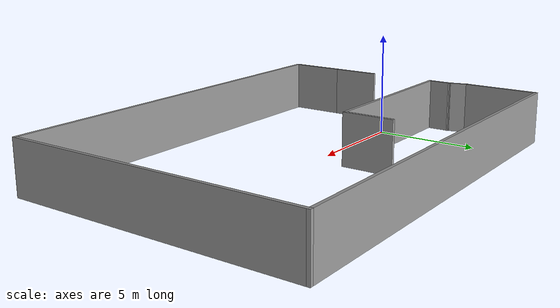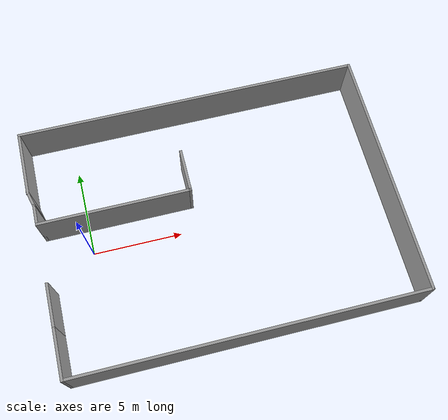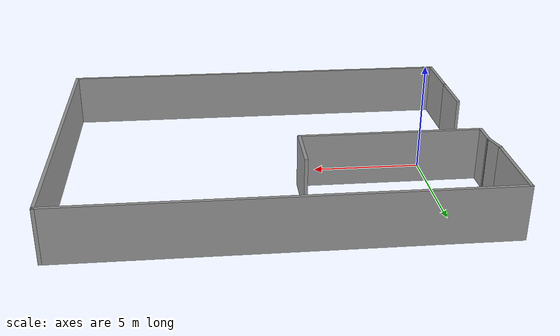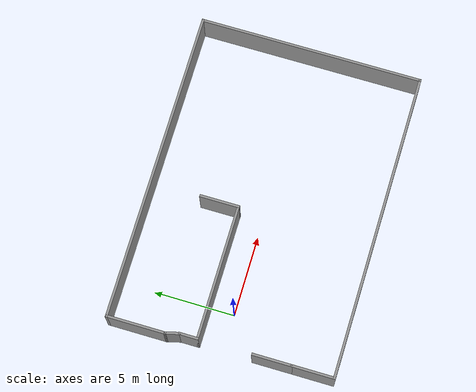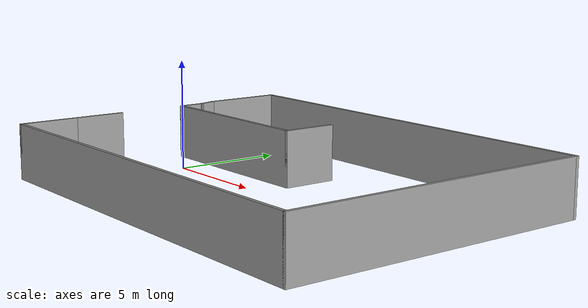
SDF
<?xml version='1.0'?>
<sdf version='1.7'>
  <model name='test_models'>
    <pose>7.06007 0.084301 0 0 -0 0</pose>
    <link name='Wall_0'>
      <collision name='Wall_0_Collision'>
        <geometry>
          <box>
            <size>2.5 0.15 2.5</size>
          </box>
        </geometry>
        <pose>0 0 1.25 0 -0 0</pose>
      </collision>
      <visual name='Wall_0_Visual'>
        <pose>0 0 1.25 0 -0 0</pose>
        <geometry>
          <box>
            <size>2.5 0.15 2.5</size>
          </box>
        </geometry>
        <material>
          <script>
            <uri>file://media/materials/scripts/gazebo.material</uri>
            <name>Gazebo/Grey</name>
          </script>
          <ambient>1 1 1 1</ambient>
        </material>
        <meta>
          <layer>0</layer>
        </meta>
      </visual>
      <pose>-9.41657 -3.15 0 0 -0 -1.5708</pose>
    </link>
    <link name='Wall_10'>
      <collision name='Wall_10_Collision'>
        <geometry>
          <box>
            <size>2.5 0.15 2.5</size>
          </box>
        </geometry>
        <pose>0 0 1.25 0 -0 0</pose>
      </collision>
      <visual name='Wall_10_Visual'>
        <pose>0 0 1.25 0 -0 0</pose>
        <geometry>
          <box>
            <size>2.5 0.15 2.5</size>
          </box>
        </geometry>
        <material>
          <script>
            <uri>file://media/materials/scripts/gazebo.material</uri>
            <name>Gazebo/Grey</name>
          </script>
          <ambient>1 1 1 1</ambient>
        </material>
        <meta>
          <layer>0</layer>
        </meta>
      </visual>
      <pose>-1.09658 2.57896 0 0 -0 1.5708</pose>
    </link>
    <link name='Wall_2'>
      <collision name='Wall_2_Collision'>
        <geometry>
          <box>
            <size>2.75 0.15 2.5</size>
          </box>
        </geometry>
        <pose>0 0 1.25 0 -0 0</pose>
      </collision>
      <visual name='Wall_2_Visual'>
        <pose>0 0 1.25 0 -0 0</pose>
        <geometry>
          <box>
            <size>2.75 0.15 2.5</size>
          </box>
        </geometry>
        <material>
          <script>
            <uri>file://media/materials/scripts/gazebo.material</uri>
            <name>Gazebo/Grey</name>
          </script>
          <ambient>1 1 1 1</ambient>
        </material>
        <meta>
          <layer>0</layer>
        </meta>
      </visual>
      <pose>-9.41657 -5.625 0 0 -0 -1.5708</pose>
    </link>
    <link name='Wall_3'>
      <collision name='Wall_3_Collision'>
        <geometry>
          <box>
            <size>19.25 0.15 2.5</size>
          </box>
        </geometry>
        <pose>0 0 1.25 0 -0 0</pose>
      </collision>
      <visual name='Wall_3_Visual'>
        <pose>0 0 1.25 0 -0 0</pose>
        <geometry>
          <box>
            <size>19.25 0.15 2.5</size>
          </box>
        </geometry>
        <material>
          <script>
            <uri>file://media/materials/scripts/gazebo.material</uri>
            <name>Gazebo/Grey</name>
          </script>
          <ambient>1 1 1 1</ambient>
        </material>
        <meta>
          <layer>0</layer>
        </meta>
      </visual>
      <pose>0.133427 -6.925 0 0 -0 0</pose>
    </link>
    <link name='Wall_4'>
      <collision name='Wall_4_Collision'>
        <geometry>
          <box>
            <size>14 0.15 2.5</size>
          </box>
        </geometry>
        <pose>0 0 1.25 0 -0 0</pose>
      </collision>
      <visual name='Wall_4_Visual'>
        <pose>0 0 1.25 0 -0 0</pose>
        <geometry>
          <box>
            <size>14 0.15 2.5</size>
          </box>
        </geometry>
        <material>
          <script>
            <uri>file://media/materials/scripts/gazebo.material</uri>
            <name>Gazebo/Grey</name>
          </script>
          <ambient>1 1 1 1</ambient>
        </material>
        <meta>
          <layer>0</layer>
        </meta>
      </visual>
      <pose>9.68343 0 0 0 -0 1.5708</pose>
    </link>
    <link name='Wall_5'>
      <collision name='Wall_5_Collision'>
        <geometry>
          <box>
            <size>19.5 0.15 2.5</size>
          </box>
        </geometry>
        <pose>0 0 1.25 0 -0 0</pose>
      </collision>
      <visual name='Wall_5_Visual'>
        <pose>0 0 1.25 0 -0 0</pose>
        <geometry>
          <box>
            <size>19.5 0.15 2.5</size>
          </box>
        </geometry>
        <material>
          <script>
            <uri>file://media/materials/scripts/gazebo.material</uri>
            <name>Gazebo/Grey</name>
          </script>
          <ambient>1 1 1 1</ambient>
        </material>
        <meta>
          <layer>0</layer>
        </meta>
      </visual>
      <pose>0.008427 6.925 0 0 -0 3.14159</pose>
    </link>
    <link name='Wall_6'>
      <collision name='Wall_6_Collision'>
        <geometry>
          <box>
            <size>3.75 0.15 2.5</size>
          </box>
        </geometry>
        <pose>0 0 1.25 0 -0 0</pose>
      </collision>
      <visual name='Wall_6_Visual'>
        <pose>0 0 1.25 0 -0 0</pose>
        <geometry>
          <box>
            <size>3.75 0.15 2.5</size>
          </box>
        </geometry>
        <material>
          <script>
            <uri>file://media/materials/scripts/gazebo.material</uri>
            <name>Gazebo/Grey</name>
          </script>
          <ambient>1 1 1 1</ambient>
        </material>
        <meta>
          <layer>0</layer>
        </meta>
      </visual>
      <pose>-9.66657 5.125 0 0 -0 -1.5708</pose>
    </link>
    <link name='Wall_7'>
      <collision name='Wall_7_Collision'>
        <geometry>
          <box>
            <size>1 0.15 2.5</size>
          </box>
        </geometry>
        <pose>0 0 1.25 0 -0 0</pose>
      </collision>
      <visual name='Wall_7_Visual'>
        <pose>0 0 1.25 0 -0 0</pose>
        <geometry>
          <box>
            <size>1 0.15 2.5</size>
          </box>
        </geometry>
        <material>
          <script>
            <uri>file://media/materials/scripts/gazebo.material</uri>
            <name>Gazebo/Grey</name>
          </script>
          <ambient>1 1 1 1</ambient>
        </material>
        <meta>
          <layer>0</layer>
        </meta>
      </visual>
      <pose>-9.55658 2.91448 0 0 -0 -1.309</pose>
    </link>
    <link name='Wall_8'>
      <collision name='Wall_8_Collision'>
        <geometry>
          <box>
            <size>1.25 0.15 2.5</size>
          </box>
        </geometry>
        <pose>0 0 1.25 0 -0 0</pose>
      </collision>
      <visual name='Wall_8_Visual'>
        <pose>0 0 1.25 0 -0 0</pose>
        <geometry>
          <box>
            <size>1.25 0.15 2.5</size>
          </box>
        </geometry>
        <material>
          <script>
            <uri>file://media/materials/scripts/gazebo.material</uri>
            <name>Gazebo/Grey</name>
          </script>
          <ambient>1 1 1 1</ambient>
        </material>
        <meta>
          <layer>0</layer>
        </meta>
      </visual>
      <pose>-9.44658 1.95396 0 0 -0 -1.5708</pose>
    </link>
    <link name='Wall_9'>
      <collision name='Wall_9_Collision'>
        <geometry>
          <box>
            <size>8.5 0.15 2.5</size>
          </box>
        </geometry>
        <pose>0 0 1.25 0 -0 0</pose>
      </collision>
      <visual name='Wall_9_Visual'>
        <pose>0 0 1.25 0 -0 0</pose>
        <geometry>
          <box>
            <size>8.5 0.15 2.5</size>
          </box>
        </geometry>
        <material>
          <script>
            <uri>file://media/materials/scripts/gazebo.material</uri>
            <name>Gazebo/Grey</name>
          </script>
          <ambient>1 1 1 1</ambient>
        </material>
        <meta>
          <layer>0</layer>
        </meta>
      </visual>
      <pose>-5.27158 1.40396 0 0 -0 0</pose>
    </link>
    <static>1</static>
  </model>
</sdf>
